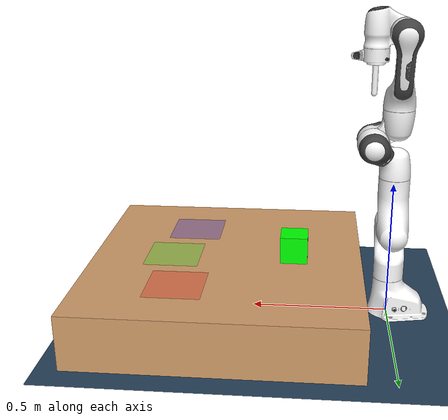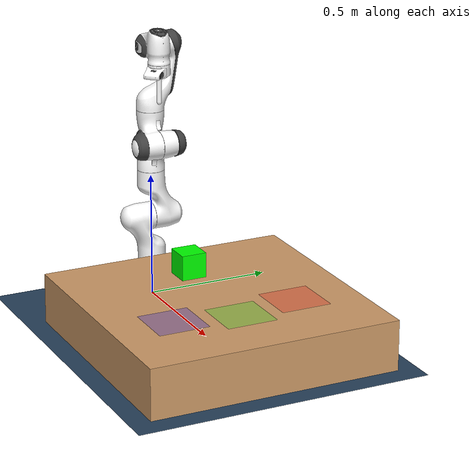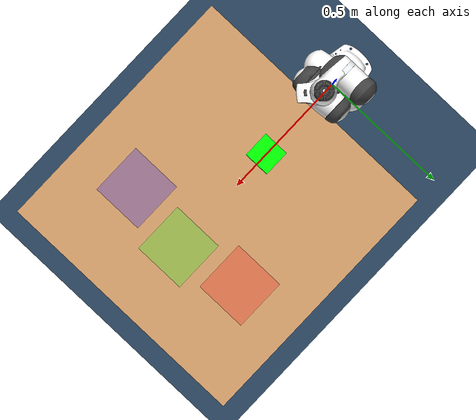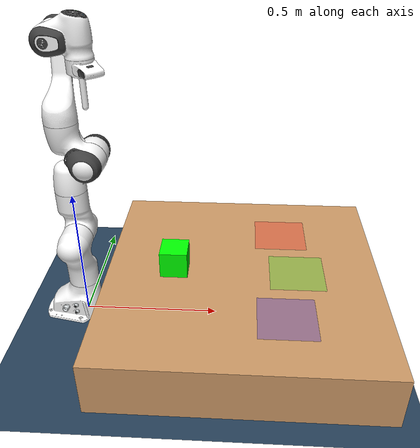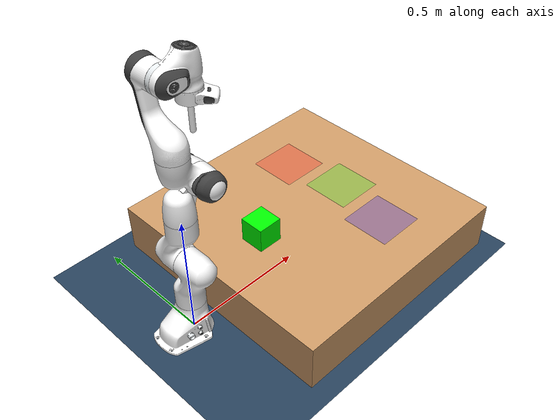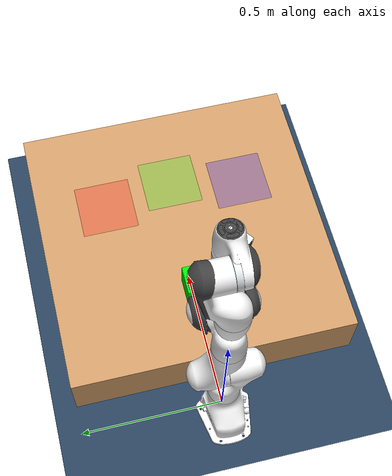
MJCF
<mujoco model="panda scene">
  <include file="panda_push.xml"/>

  <statistic center="0.3 0 0.4" extent="1"/> <!-- This is to change view camera position -->

  <visual>
    <headlight diffuse="0.6 0.6 0.6" ambient="0.3 0.3 0.3" specular="0 0 0"/>
    <rgba haze="0.15 0.25 0.35 1"/>
    <global azimuth="120" elevation="-20"/>
  </visual>

  <asset>
    <texture type="skybox" builtin="gradient" rgb1="0.3 0.5 0.7" rgb2="0 0 0" width="512" height="3072"/>
    <texture type="2d" name="groundplane" builtin="checker" mark="edge" rgb1="0.2 0.3 0.4" rgb2="0.1 0.2 0.3"
      markrgb="0.8 0.8 0.8" width="300" height="300"/>
    <material name="groundplane" texture="groundplane" texuniform="true" texrepeat="5 5" reflectance="0.2"/>
  </asset>

  <worldbody>
    <light pos="0 0 2" dir="0 0 -1" directional="true"/>
    <geom name="floor" size="0 0 0.05" type="plane" material="groundplane"/>

    <!-- Camera -->
    <camera name="top_cam" pos="0.6 0 1.5" quat="1 0 0 0" fovy="45" resolution="256 256"/>
    <camera name="side_cam" pos="0.6 -1 0.5" quat="0.7933533 0.6087614 0 0" fovy="45" resolution="256 256"/>
    <!-- Table -->
    <body name="table" pos="0.6 0 0.1">
        <geom name="table_geom" type="box" size="0.5 0.5 0.1" pos="0 0 0" rgba="0.8 0.6 0.4 1"/>
    </body>

    <!-- Object to pick -->
    <body name="object" pos="0.35 0 0.25">
        <joint name="object_joint" type="free"/>
        <geom name="object_geom" type="box" size="0.05 0.05 0.05" rgba="0 1 0 1" mass="2.5"/>
    </body>

    <!-- Target Placement -->
    <body name="r_target" pos="0.75 0.25 0.2">
        <geom name="r_target_geom" type="box" size="0.10 0.10 0.001" rgba="1 0 0 0.25" contype="0" conaffinity="0"/>
    </body>
    <body name="g_target" pos="0.8 0 0.2">
        <geom name="g_target_geom" type="box" size="0.10 0.10 0.001" rgba="0 1 0 0.25" contype="0" conaffinity="0"/>
    </body>
    <body name="b_target" pos="0.75 -0.25 0.2">
        <geom name="b_target_geom" type="box" size="0.10 0.10 0.001" rgba="0 0 1 0.25" contype="0" conaffinity="0"/>
    </body>
  </worldbody>

  <keyframe>
      <key name="home" qpos="0 -0.75048 0 -2.96190 0 2.21142 -0.78532 0.35 0 0.25 1 0 0 0" ctrl="0 -0.75048 0 -2.96190 0 2.21142 -0.78532"/>
  </keyframe>

</mujoco>

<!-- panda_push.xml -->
<mujoco model="panda push">
  <compiler angle="radian" meshdir="assets" autolimits="true"/>

  <option integrator="implicitfast" impratio="10"/>

  <default>
    <default class="panda">
      <material specular="0.5" shininess="0.25"/>
      <joint armature="0.1" damping="1" axis="0 0 1" range="-2.8973 2.8973"/>
      <general dyntype="none" biastype="affine" ctrlrange="-2.8973 2.8973" forcerange="-87 87"/>
      <default class="finger">
        <joint axis="0 1 0" type="slide" range="0 0.04"/>
      </default>

      <default class="panda/visual">
        <geom type="mesh" contype="0" conaffinity="0" group="2"/>
      </default>
      <default class="panda/collision">
        <geom type="mesh" group="3"/>
      </default>
      <site size="0.001" rgba="0.5 0.5 0.5 0.3" group="4"/>
    </default>
  </default>

  <asset>
    <material class="panda" name="white" rgba="1 1 1 1"/>
    <material class="panda" name="off_white" rgba="0.901961 0.921569 0.929412 1"/>
    <material class="panda" name="dark_grey" rgba="0.25 0.25 0.25 1"/>
    <material class="panda" name="green" rgba="0 1 0 1"/>
    <material class="panda" name="light_blue" rgba="0.039216 0.541176 0.780392 1"/>

    <!-- Collision meshes -->
    <mesh name="link0_c" file="link0.stl"/>
    <mesh name="link1_c" file="link1.stl"/>
    <mesh name="link2_c" file="link2.stl"/>
    <mesh name="link3_c" file="link3.stl"/>
    <mesh name="link4_c" file="link4.stl"/>
    <mesh name="link5_c0" file="link5_collision_0.obj"/>
    <mesh name="link5_c1" file="link5_collision_1.obj"/>
    <mesh name="link5_c2" file="link5_collision_2.obj"/>
    <mesh name="link6_c" file="link6.stl"/>
    <mesh name="link7_c" file="link7.stl"/>

    <!-- Visual meshes -->
    <mesh file="link0_0.obj"/>
    <mesh file="link0_1.obj"/>
    <mesh file="link0_2.obj"/>
    <mesh file="link0_3.obj"/>
    <mesh file="link0_4.obj"/>
    <mesh file="link0_5.obj"/>
    <mesh file="link0_7.obj"/>
    <mesh file="link0_8.obj"/>
    <mesh file="link0_9.obj"/>
    <mesh file="link0_10.obj"/>
    <mesh file="link0_11.obj"/>
    <mesh file="link1.obj"/>
    <mesh file="link2.obj"/>
    <mesh file="link3_0.obj"/>
    <mesh file="link3_1.obj"/>
    <mesh file="link3_2.obj"/>
    <mesh file="link3_3.obj"/>
    <mesh file="link4_0.obj"/>
    <mesh file="link4_1.obj"/>
    <mesh file="link4_2.obj"/>
    <mesh file="link4_3.obj"/>
    <mesh file="link5_0.obj"/>
    <mesh file="link5_1.obj"/>
    <mesh file="link5_2.obj"/>
    <mesh file="link6_0.obj"/>
    <mesh file="link6_1.obj"/>
    <mesh file="link6_2.obj"/>
    <mesh file="link6_3.obj"/>
    <mesh file="link6_4.obj"/>
    <mesh file="link6_5.obj"/>
    <mesh file="link6_6.obj"/>
    <mesh file="link6_7.obj"/>
    <mesh file="link6_8.obj"/>
    <mesh file="link6_9.obj"/>
    <mesh file="link6_10.obj"/>
    <mesh file="link6_11.obj"/>
    <mesh file="link6_12.obj"/>
    <mesh file="link6_13.obj"/>
    <mesh file="link6_14.obj"/>
    <mesh file="link6_15.obj"/>
    <mesh file="link6_16.obj"/>
    <mesh file="link7_0.obj"/>
    <mesh file="link7_1.obj"/>
    <mesh file="link7_2.obj"/>
    <mesh file="link7_3.obj"/>
    <mesh file="link7_4.obj"/>
    <mesh file="link7_5.obj"/>
    <mesh file="link7_6.obj"/>
    <mesh file="link7_7.obj"/>
  </asset>

  <worldbody>
    <body name="link0" childclass="panda">
      <inertial mass="0.629769" pos="-0.041018 -0.00014 0.049974"
        fullinertia="0.00315 0.00388 0.004285 8.2904e-7 0.00015 8.2299e-6"/>
      <geom mesh="link0_0" material="off_white" class="panda/visual"/>
      <geom mesh="link0_1" material="dark_grey" class="panda/visual"/>
      <geom mesh="link0_2" material="off_white" class="panda/visual"/>
      <geom mesh="link0_3" material="dark_grey" class="panda/visual"/>
      <geom mesh="link0_4" material="off_white" class="panda/visual"/>
      <geom mesh="link0_5" material="dark_grey" class="panda/visual"/>
      <geom mesh="link0_7" material="white" class="panda/visual"/>
      <geom mesh="link0_8" material="white" class="panda/visual"/>
      <geom mesh="link0_9" material="dark_grey" class="panda/visual"/>
      <geom mesh="link0_10" material="off_white" class="panda/visual"/>
      <geom mesh="link0_11" material="white" class="panda/visual"/>
      <geom mesh="link0_c" class="panda/collision"/>
      <body name="link1" pos="0 0 0.333">
        <inertial mass="4.970684" pos="0.003875 0.002081 -0.04762"
          fullinertia="0.70337 0.70661 0.0091170 -0.00013900 0.0067720 0.019169"/>
        <joint name="joint1"/>
        <geom material="white" mesh="link1" class="panda/visual"/>
        <geom mesh="link1_c" class="panda/collision"/>
        <body name="link2" quat="1 -1 0 0">
          <inertial mass="0.646926" pos="-0.003141 -0.02872 0.003495"
            fullinertia="0.0079620 2.8110e-2 2.5995e-2 -3.925e-3 1.0254e-2 7.04e-4"/>
          <joint name="joint2" range="-1.7628 1.7628"/>
          <geom material="white" mesh="link2" class="panda/visual"/>
          <geom mesh="link2_c" class="panda/collision"/>
          <body name="link3" pos="0 -0.316 0" quat="1 1 0 0">
            <joint name="joint3"/>
            <inertial mass="3.228604" pos="2.7518e-2 3.9252e-2 -6.6502e-2"
              fullinertia="3.7242e-2 3.6155e-2 1.083e-2 -4.761e-3 -1.1396e-2 -1.2805e-2"/>
            <geom mesh="link3_0" material="white" class="panda/visual"/>
            <geom mesh="link3_1" material="white" class="panda/visual"/>
            <geom mesh="link3_2" material="white" class="panda/visual"/>
            <geom mesh="link3_3" material="dark_grey" class="panda/visual"/>
            <geom mesh="link3_c" class="panda/collision"/>
            <body name="link4" pos="0.0825 0 0" quat="1 1 0 0">
              <inertial mass="3.587895" pos="-5.317e-2 1.04419e-1 2.7454e-2"
                fullinertia="2.5853e-2 1.9552e-2 2.8323e-2 7.796e-3 -1.332e-3 8.641e-3"/>
              <joint name="joint4" range="-3.0718 -0.0698"/>
              <geom mesh="link4_0" material="white" class="panda/visual"/>
              <geom mesh="link4_1" material="white" class="panda/visual"/>
              <geom mesh="link4_2" material="dark_grey" class="panda/visual"/>
              <geom mesh="link4_3" material="white" class="panda/visual"/>
              <geom mesh="link4_c" class="panda/collision"/>
              <body name="link5" pos="-0.0825 0.384 0" quat="1 -1 0 0">
                <inertial mass="1.225946" pos="-1.1953e-2 4.1065e-2 -3.8437e-2"
                  fullinertia="3.5549e-2 2.9474e-2 8.627e-3 -2.117e-3 -4.037e-3 2.29e-4"/>
                <joint name="joint5"/>
                <geom mesh="link5_0" material="dark_grey" class="panda/visual"/>
                <geom mesh="link5_1" material="white" class="panda/visual"/>
                <geom mesh="link5_2" material="white" class="panda/visual"/>
                <geom mesh="link5_c0" class="panda/collision"/>
                <geom mesh="link5_c1" class="panda/collision"/>
                <geom mesh="link5_c2" class="panda/collision"/>
                <body name="link6" quat="1 1 0 0">
                  <inertial mass="1.666555" pos="6.0149e-2 -1.4117e-2 -1.0517e-2"
                    fullinertia="1.964e-3 4.354e-3 5.433e-3 1.09e-4 -1.158e-3 3.41e-4"/>
                  <joint name="joint6" range="-0.0175 3.7525"/>
                  <geom mesh="link6_0" material="off_white" class="panda/visual"/>
                  <geom mesh="link6_1" material="white" class="panda/visual"/>
                  <geom mesh="link6_2" material="dark_grey" class="panda/visual"/>
                  <geom mesh="link6_3" material="white" class="panda/visual"/>
                  <geom mesh="link6_4" material="white" class="panda/visual"/>
                  <geom mesh="link6_5" material="white" class="panda/visual"/>
                  <geom mesh="link6_6" material="white" class="panda/visual"/>
                  <geom mesh="link6_7" material="light_blue" class="panda/visual"/>
                  <geom mesh="link6_8" material="light_blue" class="panda/visual"/>
                  <geom mesh="link6_9" material="dark_grey" class="panda/visual"/>
                  <geom mesh="link6_10" material="dark_grey" class="panda/visual"/>
                  <geom mesh="link6_11" material="white" class="panda/visual"/>
                  <geom mesh="link6_12" material="green" class="panda/visual"/>
                  <geom mesh="link6_13" material="white" class="panda/visual"/>
                  <geom mesh="link6_14" material="dark_grey" class="panda/visual"/>
                  <geom mesh="link6_15" material="dark_grey" class="panda/visual"/>
                  <geom mesh="link6_16" material="white" class="panda/visual"/>
                  <geom mesh="link6_c" class="panda/collision"/>
                  <body name="link7" pos="0.088 0 0" quat="1 1 0 0">
                    <inertial mass="7.35522e-01" pos="1.0517e-2 -4.252e-3 6.1597e-2"
                      fullinertia="1.2516e-2 1.0027e-2 4.815e-3 -4.28e-4 -1.196e-3 -7.41e-4"/>
                    <joint name="joint7"/>
                    <geom mesh="link7_0" material="white" class="panda/visual"/>
                    <geom mesh="link7_1" material="dark_grey" class="panda/visual"/>
                    <geom mesh="link7_2" material="dark_grey" class="panda/visual"/>
                    <geom mesh="link7_3" material="dark_grey" class="panda/visual"/>
                    <geom mesh="link7_4" material="dark_grey" class="panda/visual"/>
                    <geom mesh="link7_5" material="dark_grey" class="panda/visual"/>
                    <geom mesh="link7_6" material="dark_grey" class="panda/visual"/>
                    <geom mesh="link7_7" material="white" class="panda/visual"/>
                    <geom mesh="link7_c" class="panda/collision"/>
                    <body name="attachment" pos="0 0 0.107" quat="0.3826834 0 0 0.9238795">
                      <site name="attachment_site"/>
                      <geom type="capsule" fromto="0 0 0 0 0 0.1" size="0.01" material="white"/>
                      <site name="end_effector" pos="0 0 0.1"/>
                    </body>
                  </body>
                </body>
              </body>
            </body>
          </body>
        </body>
      </body>
    </body>
  </worldbody>

  <actuator>
    <general class="panda" name="actuator1" joint="joint1" gainprm="4500" biasprm="0 -4500 -450"/>
    <general class="panda" name="actuator2" joint="joint2" gainprm="4500" biasprm="0 -4500 -450"
      ctrlrange="-1.7628 1.7628"/>
    <general class="panda" name="actuator3" joint="joint3" gainprm="3500" biasprm="0 -3500 -350"/>
    <general class="panda" name="actuator4" joint="joint4" gainprm="3500" biasprm="0 -3500 -350"
      ctrlrange="-3.0718 -0.0698"/>
    <general class="panda" name="actuator5" joint="joint5" gainprm="2000" biasprm="0 -2000 -200" forcerange="-12 12"/>
    <general class="panda" name="actuator6" joint="joint6" gainprm="2000" biasprm="0 -2000 -200" forcerange="-12 12"
      ctrlrange="-0.0175 3.7525"/>
    <general class="panda" name="actuator7" joint="joint7" gainprm="2000" biasprm="0 -2000 -200" forcerange="-12 12"/>
  </actuator>
</mujoco>
